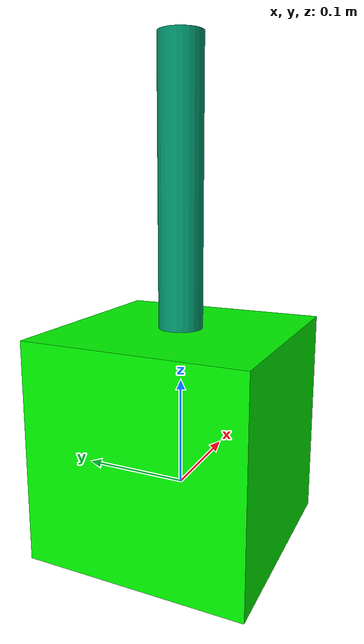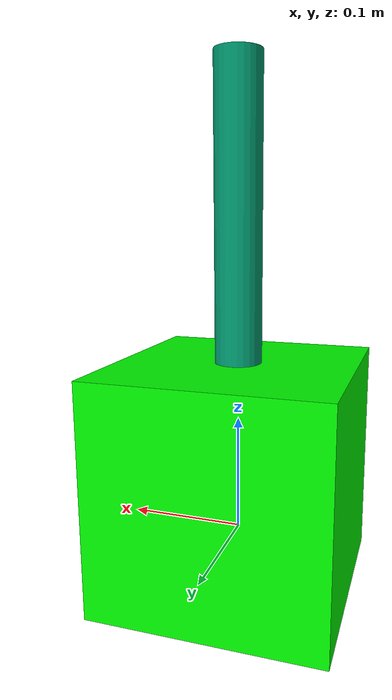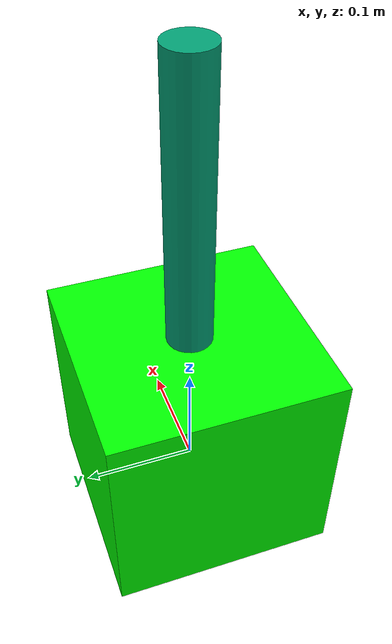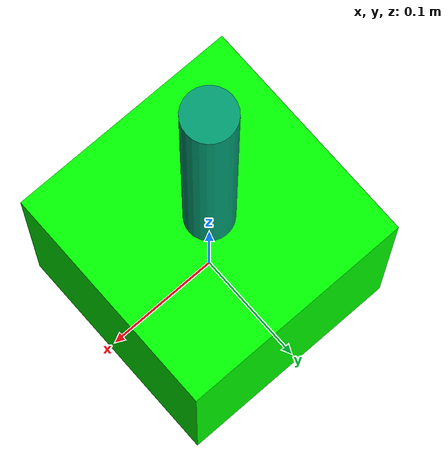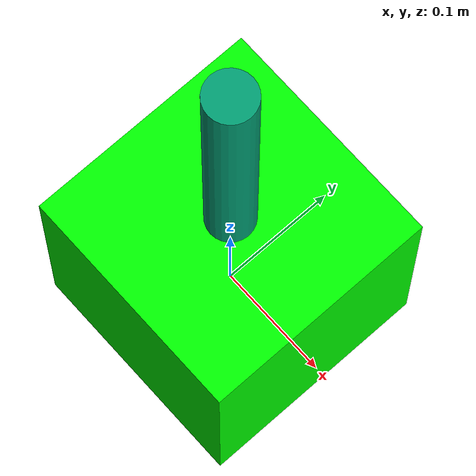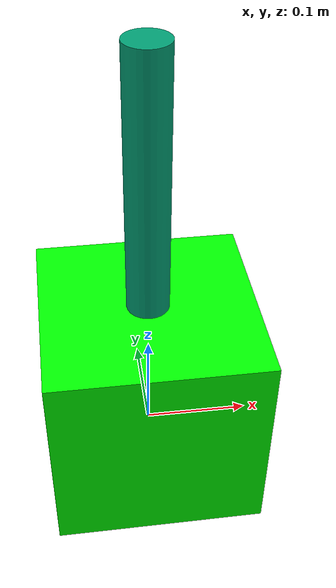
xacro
<?xml version="1.0"?>
<robot xmlns:xacro="http://www.ros.org/wiki/xacro" name="hexapod_single_leg">

  <link name="map"/>

  <joint name="virtual_joint" type="fixed">
    <parent link="map"/>
    <child link="base_link"/>
    <origin xyz="0 0 0" rpy="0 0 0"/>
  </joint>

  <link name="base_link">
    <visual>
      <origin xyz="0 0 0.05" rpy="0 0 0"/>
      <geometry>
        <box size="0.2 0.2 0.2"/>
      </geometry>
      <material name="green">
        <color rgba="0 1 0 1"/> </material>
    </visual>
  </link>

  <!-- truc dong co-->
  <link name="leg_1">
    <visual>
      <geometry>
        <cylinder length="0.3" radius="0.02"/>
      </geometry>
      <origin xyz="0 0 0.15" rpy="0 0 0"/>
    </visual>
  </link>

  <joint name="joint_1" type="continuous">
    <parent link="base_link"/>
    <child link="leg_1"/>
    <origin xyz="0 0 0.1" rpy="0 0 0"/>
    <axis xyz="0 0 1"/>
  </joint>

</robot>
